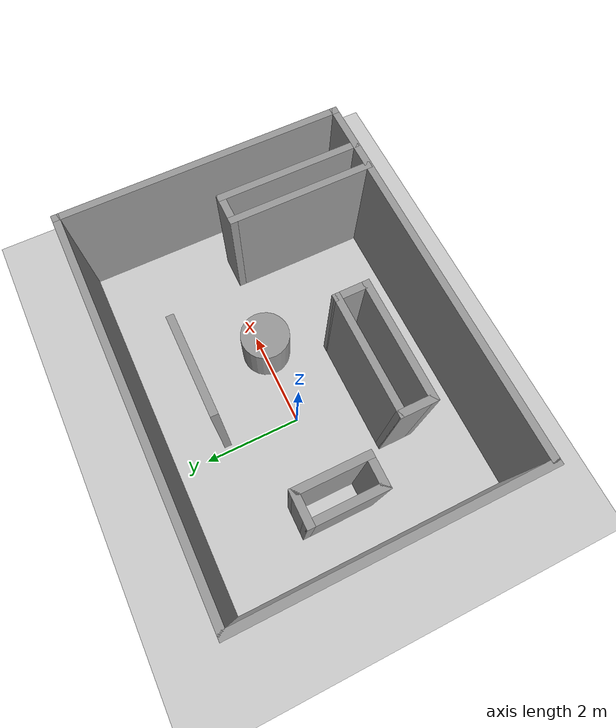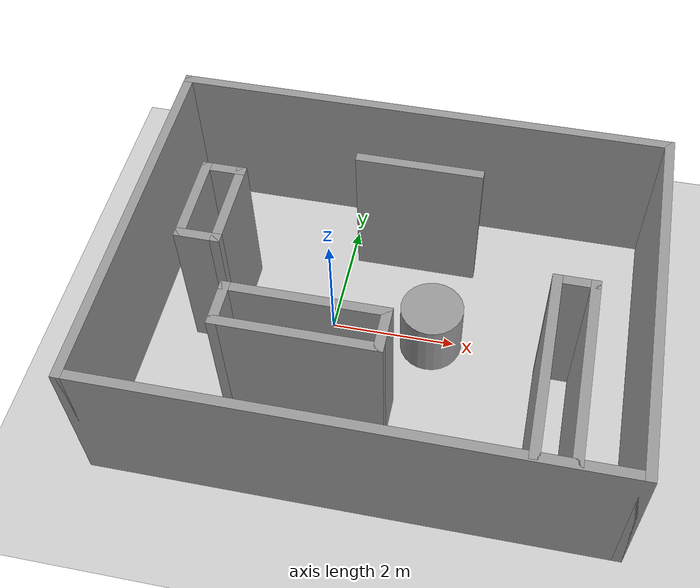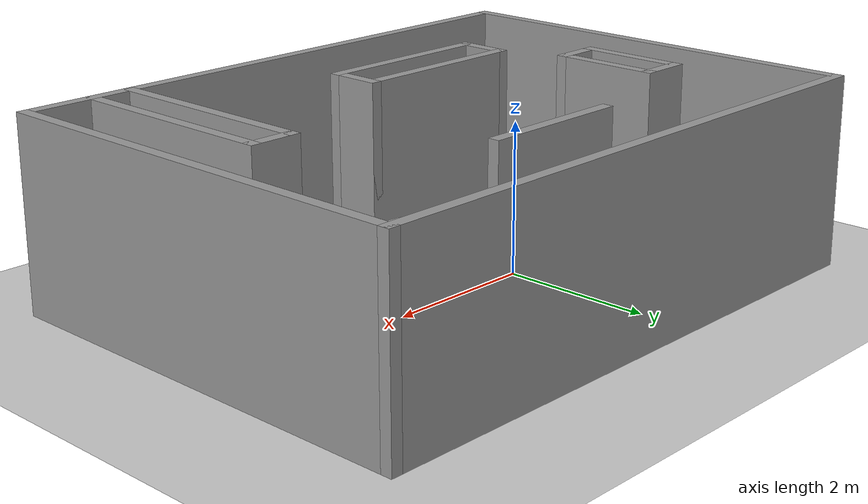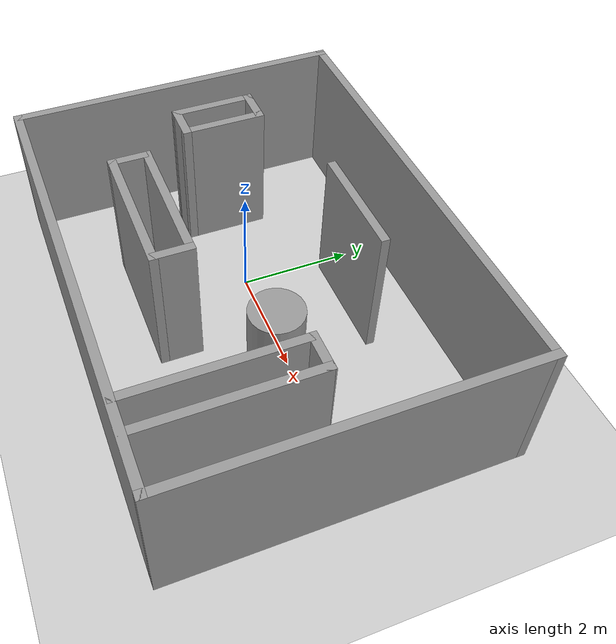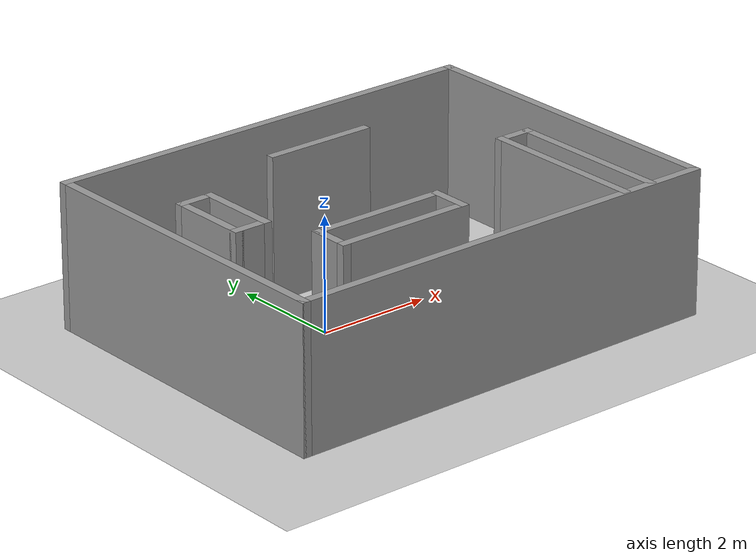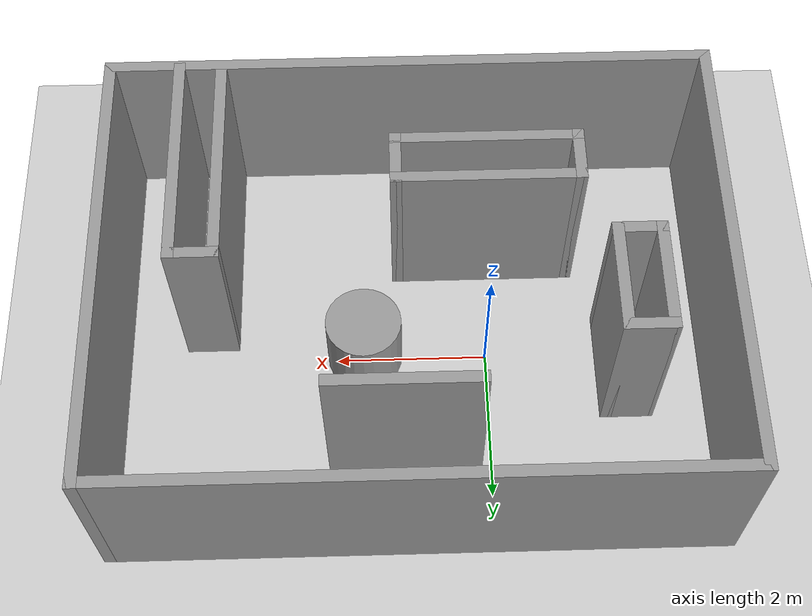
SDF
<sdf version="1.7">
 <world name="default">
  <light name="sun" type="directional">
   <pose>0 0 10 0 -0 0</pose>
   <diffuse>0.8 0.8 0.8 1</diffuse>
   <specular>0.2 0.2 0.2 1</specular>
   <attenuation>
    <range>1000</range>
    <constant>0.9</constant>
    <linear>0.01</linear>
    <quadratic>0.001</quadratic>
   </attenuation>
   <direction>-0.5 0.1 -0.9</direction>
   <spot><inner_angle>0</inner_angle><outer_angle>0</outer_angle><falloff>0</falloff></spot>
  </light>
  <model name="ground_plane">
   <static>1</static>
   <link name="link">
    <collision name="collision">
     <geometry><plane><normal>0 0 1</normal><size>100 100</size></plane></geometry>
     <surface>
      <contact><collide_bitmask>65535</collide_bitmask></contact>
      <friction><ode><mu>100</mu><mu2>50</mu2></ode></friction>
     </surface>
    </collision>
    <visual name="visual">
     <cast_shadows>0</cast_shadows>
     <geometry><plane><normal>0 0 1</normal><size>100 100</size></plane></geometry>
     <material>
      <script><uri>file://media/materials/scripts/gazebo.material</uri><name>Gazebo/Grey</name></script>
     </material>
    </visual>
   </link>
  </model>
  <gravity>0 0 -9.8</gravity>
  <magnetic_field>6e-06 2.3e-05 -4.2e-05</magnetic_field>
  <atmosphere type="adiabatic"/>
  <physics type="ode">
   <max_step_size>0.001</max_step_size>
   <real_time_factor>1</real_time_factor>
   <real_time_update_rate>1000</real_time_update_rate>
  </physics>
  <scene><ambient>0.4 0.4 0.4 1</ambient><background>0.7 0.7 0.7 1</background><shadows>1</shadows></scene>
  <spherical_coordinates>
   <surface_model>EARTH_WGS84</surface_model>
   <latitude_deg>0</latitude_deg>
   <longitude_deg>0</longitude_deg>
   <elevation>0</elevation>
   <heading_deg>0</heading_deg>
  </spherical_coordinates>
  <model name="test01">
   <pose>0.956643 -0.23535 0 0 -0 0</pose>
   <link name="Wall_15">
    <collision name="Wall_15_Collision">
     <geometry><box><size>0.7 0.15 2.5</size></box></geometry>
     <pose>0 0 1.25 0 -0 0</pose>
    </collision>
    <visual name="Wall_15_Visual">
     <pose>0 0 1.25 0 -0 0</pose>
     <geometry><box><size>0.7 0.15 2.5</size></box></geometry>
     <material>
      <script><uri>file://media/materials/scripts/gazebo.material</uri><name>Gazebo/Grey</name></script>
      <ambient>1 1 1 1</ambient>
     </material>
     <meta><layer>0</layer></meta>
    </visual>
    <pose>-2.79555 1.0881 0 0 -0 0</pose>
   </link>
   <link name="Wall_18">
    <collision name="Wall_18_Collision">
     <geometry><box><size>1.5 0.15 2.5</size></box></geometry>
     <pose>0 0 1.25 0 -0 0</pose>
    </collision>
    <visual name="Wall_18_Visual">
     <pose>0 0 1.25 0 -0 0</pose>
     <geometry><box><size>1.5 0.15 2.5</size></box></geometry>
     <material>
      <script><uri>file://media/materials/scripts/gazebo.material</uri><name>Gazebo/Grey</name></script>
      <ambient>1 1 1 1</ambient>
     </material>
     <meta><layer>0</layer></meta>
    </visual>
    <pose>-2.52055 0.4131 0 0 -0 -1.5708</pose>
   </link>
   <link name="Wall_2">
    <collision name="Wall_2_Collision">
     <geometry><box><size>8 0.15 2.5</size></box></geometry>
     <pose>0 0 1.25 0 -0 0</pose>
    </collision>
    <visual name="Wall_2_Visual">
     <pose>0 0 1.25 0 -0 0</pose>
     <geometry><box><size>8 0.15 2.5</size></box></geometry>
     <material>
      <script><uri>file://media/materials/scripts/gazebo.material</uri><name>Gazebo/Grey</name></script>
      <ambient>1 1 1 1</ambient>
     </material>
     <meta><layer>0</layer></meta>
    </visual>
    <pose>0 -2.925 0 0 -0 0</pose>
   </link>
   <link name="Wall_20">
    <collision name="Wall_20_Collision">
     <geometry><box><size>1.5 0.15 2.5</size></box></geometry>
     <pose>0 0 1.25 0 -0 0</pose>
    </collision>
    <visual name="Wall_20_Visual">
     <pose>0 0 1.25 0 -0 0</pose>
     <geometry><box><size>1.5 0.15 2.5</size></box></geometry>
     <material>
      <script><uri>file://media/materials/scripts/gazebo.material</uri><name>Gazebo/Grey</name></script>
      <ambient>1 1 1 1</ambient>
     </material>
     <meta><layer>0</layer></meta>
    </visual>
    <pose>-3.07055 0.4131 0 0 -0 -1.5708</pose>
   </link>
   <link name="Wall_21">
    <collision name="Wall_21_Collision">
     <geometry><box><size>0.7 0.15 2.5</size></box></geometry>
     <pose>0 0 1.25 0 -0 0</pose>
    </collision>
    <visual name="Wall_21_Visual">
     <pose>0 0 1.25 0 -0 0</pose>
     <geometry><box><size>0.7 0.15 2.5</size></box></geometry>
     <material>
      <script><uri>file://media/materials/scripts/gazebo.material</uri><name>Gazebo/Grey</name></script>
      <ambient>1 1 1 1</ambient>
     </material>
     <meta><layer>0</layer></meta>
    </visual>
    <pose>-2.79555 -0.2619 0 0 -0 0</pose>
   </link>
   <link name="Wall_25">
    <collision name="Wall_25_Collision">
     <geometry><box><size>3 0.15 2.5</size></box></geometry>
     <pose>0 0 1.25 0 -0 0</pose>
    </collision>
    <visual name="Wall_25_Visual">
     <pose>0 0 1.25 0 -0 0</pose>
     <geometry><box><size>3 0.15 2.5</size></box></geometry>
     <material>
      <script><uri>file://media/materials/scripts/gazebo.material</uri><name>Gazebo/Grey</name></script>
      <ambient>1 1 1 1</ambient>
     </material>
     <meta><layer>0</layer></meta>
    </visual>
    <pose>3.01247 -1.46893 0 0 -0 1.57081</pose>
   </link>
   <link name="Wall_26">
    <collision name="Wall_26_Collision">
     <geometry><box><size>0.7 0.15 2.5</size></box></geometry>
     <pose>0 0 1.25 0 -0 0</pose>
    </collision>
    <visual name="Wall_26_Visual">
     <pose>0 0 1.25 0 -0 0</pose>
     <geometry><box><size>0.7 0.15 2.5</size></box></geometry>
     <material>
      <script><uri>file://media/materials/scripts/gazebo.material</uri><name>Gazebo/Grey</name></script>
      <ambient>1 1 1 1</ambient>
     </material>
     <meta><layer>0</layer></meta>
    </visual>
    <pose>2.73745 -0.0439 0 0 -0 3.14159</pose>
   </link>
   <link name="Wall_28">
    <collision name="Wall_28_Collision">
     <geometry><box><size>3 0.15 2.5</size></box></geometry>
     <pose>0 0 1.25 0 -0 0</pose>
    </collision>
    <visual name="Wall_28_Visual">
     <pose>0 0 1.25 0 -0 0</pose>
     <geometry><box><size>3 0.15 2.5</size></box></geometry>
     <material>
      <script><uri>file://media/materials/scripts/gazebo.material</uri><name>Gazebo/Grey</name></script>
      <ambient>1 1 1 1</ambient>
     </material>
     <meta><layer>0</layer></meta>
    </visual>
    <pose>2.46245 -1.4689 0 0 -0 -1.5708</pose>
   </link>
   <link name="Wall_30">
    <collision name="Wall_30_Collision">
     <geometry><box><size>2.5 0.15 2.5</size></box></geometry>
     <pose>0 0 1.25 0 -0 0</pose>
    </collision>
    <visual name="Wall_30_Visual">
     <pose>0 0 1.25 0 -0 0</pose>
     <geometry><box><size>2.5 0.15 2.5</size></box></geometry>
     <material>
      <script><uri>file://media/materials/scripts/gazebo.material</uri><name>Gazebo/Grey</name></script>
      <ambient>1 1 1 1</ambient>
     </material>
     <meta><layer>0</layer></meta>
    </visual>
    <pose>-0.97025 -1.08213 0 0 -0 0</pose>
   </link>
   <link name="Wall_31">
    <collision name="Wall_31_Collision">
     <geometry><box><size>0.75 0.15 2.5</size></box></geometry>
     <pose>0 0 1.25 0 -0 0</pose>
    </collision>
    <visual name="Wall_31_Visual">
     <pose>0 0 1.25 0 -0 0</pose>
     <geometry><box><size>0.75 0.15 2.5</size></box></geometry>
     <material>
      <script><uri>file://media/materials/scripts/gazebo.material</uri><name>Gazebo/Grey</name></script>
      <ambient>1 1 1 1</ambient>
     </material>
     <meta><layer>0</layer></meta>
    </visual>
    <pose>0.20475 -1.38213 0 0 -0 -1.5708</pose>
   </link>
   <link name="Wall_32">
    <collision name="Wall_32_Collision">
     <geometry><box><size>2.5 0.15 2.5</size></box></geometry>
     <pose>0 0 1.25 0 -0 0</pose>
    </collision>
    <visual name="Wall_32_Visual">
     <pose>0 0 1.25 0 -0 0</pose>
     <geometry><box><size>2.5 0.15 2.5</size></box></geometry>
     <material>
      <script><uri>file://media/materials/scripts/gazebo.material</uri><name>Gazebo/Grey</name></script>
      <ambient>1 1 1 1</ambient>
     </material>
     <meta><layer>0</layer></meta>
    </visual>
    <pose>-0.97025 -1.68213 0 0 -0 3.14159</pose>
   </link>
   <link name="Wall_33">
    <collision name="Wall_33_Collision">
     <geometry><box><size>0.75 0.15 2.5</size></box></geometry>
     <pose>0 0 1.25 0 -0 0</pose>
    </collision>
    <visual name="Wall_33_Visual">
     <pose>0 0 1.25 0 -0 0</pose>
     <geometry><box><size>0.75 0.15 2.5</size></box></geometry>
     <material>
      <script><uri>file://media/materials/scripts/gazebo.material</uri><name>Gazebo/Grey</name></script>
      <ambient>1 1 1 1</ambient>
     </material>
     <meta><layer>0</layer></meta>
    </visual>
    <pose>-2.14525 -1.38213 0 0 -0 1.5708</pose>
   </link>
   <link name="Wall_36">
    <collision name="Wall_36_Collision">
     <geometry><box><size>2 0.15 2.5</size></box></geometry>
     <pose>0 0 1.25 0 -0 0</pose>
    </collision>
    <visual name="Wall_36_Visual">
     <pose>0 0 1.25 0 -0 0</pose>
     <geometry><box><size>2 0.15 2.5</size></box></geometry>
     <material>
      <script><uri>file://media/materials/scripts/gazebo.material</uri><name>Gazebo/Grey</name></script>
      <ambient>1 1 1 1</ambient>
     </material>
     <meta><layer>0</layer></meta>
    </visual>
    <pose>0.15515 1.7348 0 0 -0 0</pose>
   </link>
   <link name="Wall_7">
    <collision name="Wall_7_Collision">
     <geometry><box><size>6 0.15 2.5</size></box></geometry>
     <pose>0 0 1.25 0 -0 0</pose>
    </collision>
    <visual name="Wall_7_Visual">
     <pose>0 0 1.25 0 -0 0</pose>
     <geometry><box><size>6 0.15 2.5</size></box></geometry>
     <material>
      <script><uri>file://media/materials/scripts/gazebo.material</uri><name>Gazebo/Grey</name></script>
      <ambient>1 1 1 1</ambient>
     </material>
     <meta><layer>0</layer></meta>
    </visual>
    <pose>3.925 0 0 0 -0 1.5708</pose>
   </link>
   <link name="Wall_8">
    <collision name="Wall_8_Collision">
     <geometry><box><size>8 0.15 2.5</size></box></geometry>
     <pose>0 0 1.25 0 -0 0</pose>
    </collision>
    <visual name="Wall_8_Visual">
     <pose>0 0 1.25 0 -0 0</pose>
     <geometry><box><size>8 0.15 2.5</size></box></geometry>
     <material>
      <script><uri>file://media/materials/scripts/gazebo.material</uri><name>Gazebo/Grey</name></script>
      <ambient>1 1 1 1</ambient>
     </material>
     <meta><layer>0</layer></meta>
    </visual>
    <pose>0 2.925 0 0 -0 3.14159</pose>
   </link>
   <link name="Wall_9">
    <collision name="Wall_9_Collision">
     <geometry><box><size>6 0.15 2.5</size></box></geometry>
     <pose>0 0 1.25 0 -0 0</pose>
    </collision>
    <visual name="Wall_9_Visual">
     <pose>0 0 1.25 0 -0 0</pose>
     <geometry><box><size>6 0.15 2.5</size></box></geometry>
     <material>
      <script><uri>file://media/materials/scripts/gazebo.material</uri><name>Gazebo/Grey</name></script>
      <ambient>1 1 1 1</ambient>
     </material>
     <meta><layer>0</layer></meta>
    </visual>
    <pose>-3.925 0 0 0 -0 -1.5708</pose>
   </link>
   <static>1</static>
  </model>
  <model name="unit_cylinder">
   <pose>1.62952 -0.063302 0.499997 3e-06 4e-06 -0</pose>
   <link name="link">
    <inertial>
     <mass>1</mass>
     <inertia><ixx>0.145833</ixx><ixy>0</ixy><ixz>0</ixz><iyy>0.145833</iyy><iyz>0</iyz><izz>0.125</izz></inertia>
    </inertial>
    <collision name="collision">
     <geometry><cylinder><radius>0.5</radius><length>1</length></cylinder></geometry>
    </collision>
    <visual name="visual">
     <geometry><cylinder><radius>0.5</radius><length>1</length></cylinder></geometry>
     <material>
      <script><name>Gazebo/Grey</name><uri>file://media/materials/scripts/gazebo.material</uri></script>
     </material>
    </visual>
   </link>
  </model>
 </world>
</sdf>
